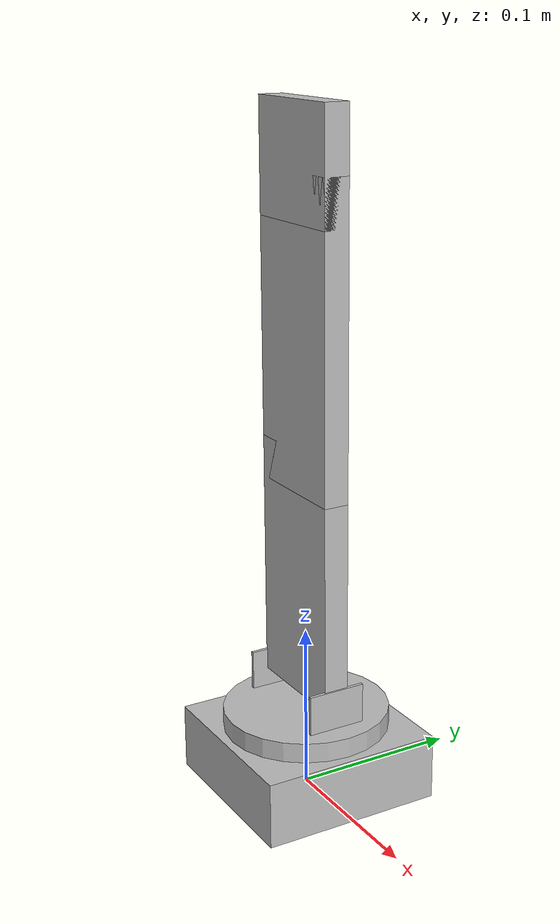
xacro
<?xml version="1.0"?>
<robot name="softsnake">
    <link name="world"/>
    <link name="base">
        <visual>
            <geometry>
                <box size="0.11 0.11 0.04"/>
            </geometry>
        <material name="silver">
            <color rgba="0.75 0.75 0.75 1"/>
        </material>
        <origin rpy="0 0 0" xyz="0 0 0.02"/>
        </visual>
    </link>
    <joint name="joint_base_fixed" type="fixed">
        <parent link="world"/>
        <child link="base"/>
    </joint>
    <link name="base_link">
        <visual>
            <geometry>
                <cylinder length="0.012" radius="0.05"/>
            </geometry>
        <material name="silver">
            <color rgba="0.75 0.75 0.75 1"/>
        </material>
        </visual>
    </link>
    <joint name="joint_base_link" type="revolute">
        <axis xyz="0 0 1"/>
        <parent link="base"/>
        <child link="base_link"/>
        <limit effort="30" velocity="1.0" lower="-2.2" upper="0.7" />
        <origin rpy="0 0 0" xyz="0 0 0.046"/>
    </joint>
    <link name="sjoint1">
        <visual>
            <geometry>
                <box size = "0.002 0.035 0.025"/>
            </geometry>
        <material name="silver">
            <color rgba="0.75 0.75 0.75 1"/>
        </material>
        <origin rpy="0 0 0" xyz="0.035 0 0.0175"/>s
        </visual>
    </link>
    <joint name="sjoint_base1" type="fixed">
        <parent link="base_link"/>
        <child link="sjoint1"/>
    </joint>
    <link name="sjoint2">
        <visual>
            <geometry>
                <box size = "0.002 0.035 0.025"/>
            </geometry>
        <material name="silver">
            <color rgba="0.75 0.75 0.75 1"/>
        </material>
        <origin rpy="0 0 0" xyz="-0.035 0 0.0175"/>
        </visual>
    </link>
    <joint name="sjoint_base2" type="fixed">
        <parent link="base_link"/>
        <child link="sjoint2"/>
    </joint>
    <link name="joint1_link">
        <visual>
            <geometry>
                <box size = "0.07 0.015 0.15"/>
            </geometry>
        <material name="silver">
            <color rgba="0.75 0.75 0.75 1"/>
        </material>
        <origin rpy="0 0 0" xyz="0 0 0.08"/>
        </visual>
    </link>
    <joint name="joint1_link" type="revolute">
        <axis xyz="1 0 0"/>
        <parent link="base_link"/>
        <child link="joint1_link"/>
        <limit effort="30" velocity="1.0" lower="-1.5" upper="1.5" />
        <origin rpy="0 0 0" xyz="0 0 0.0125"/>
    </joint>
     <link name="joint2_link">
        <visual>
            <geometry>
                <box size = "0.07 0.015 0.18"/>
            </geometry>
        <material name="silver">
            <color rgba="0.75 0.75 0.75 1"/>
        </material>
        <origin rpy="0 0 0" xyz="0 0 0.08"/>
        </visual>
    </link>
    <joint name="joint2_link" type="revolute">
        <axis xyz="1 0 0"/>
        <parent link="joint1_link"/>
        <child link="joint2_link"/>
        <limit effort="30" velocity="1.0" lower="-1.5" upper="1.5" />
        <origin rpy="0 0 0" xyz="0 0 0.14"/>
    </joint>
    <link name="joint3_link">
        <visual>
            <geometry>
                <box size = "0.07 0.015 0.065"/>
            </geometry>
        <material name="silver">
            <color rgba="0.75 0.75 0.75 1"/>
        </material>
        <origin rpy="0 0 0" xyz="0 0 0.025"/>
        </visual>
    </link>
    <joint name="joint3_link" type="revolute">
        <axis xyz="1 0 0"/>
        <parent link="joint2_link"/>
        <child link="joint3_link"/>
        <limit effort="30" velocity="1.0" lower="-1.5" upper="1.5" />
        <origin rpy="0 0 0" xyz="0 0 0.15"/>
    </joint>
</robot>
